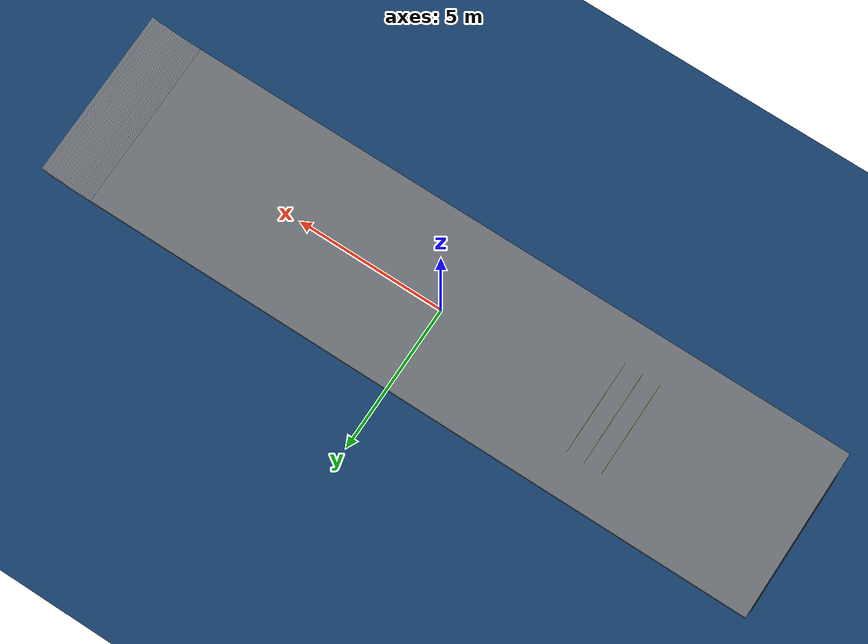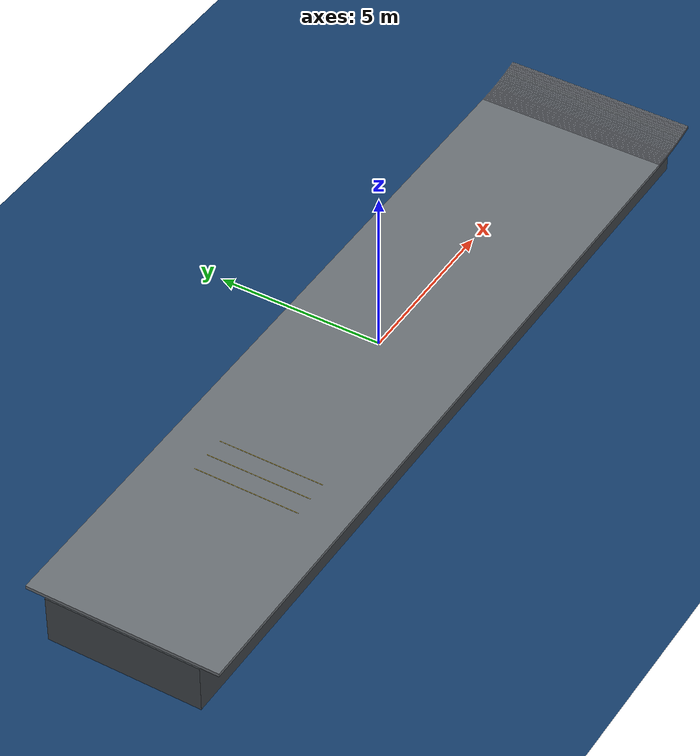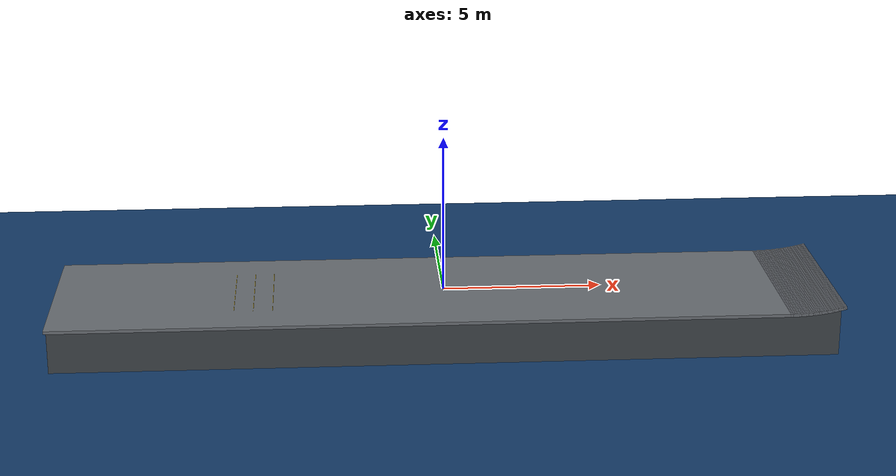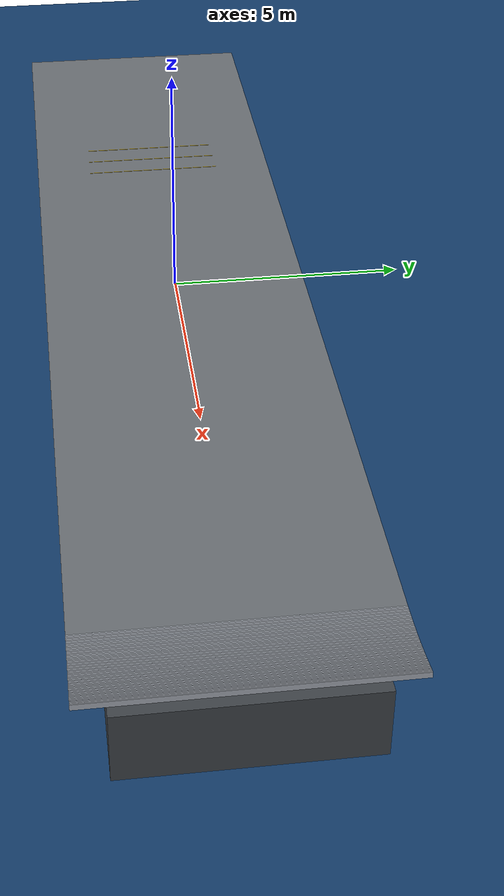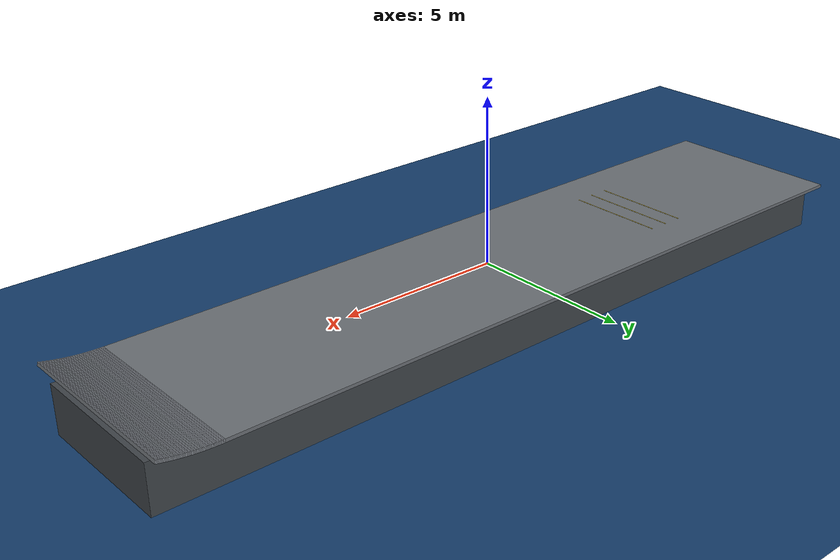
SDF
<sdf version="1.9">
 <world name="physics">
  <physics name="1ms" type="ignored">
   <max_step_size>0.001</max_step_size>
   <real_time_factor>1.0</real_time_factor>
  </physics>
  <plugin filename="gz-sim-physics-system" name="gz::sim::systems::Physics"/>
  <plugin filename="gz-sim-user-commands-system" name="gz::sim::systems::UserCommands"/>
  <plugin filename="gz-sim-scene-broadcaster-system" name="gz::sim::systems::SceneBroadcaster"/>
  <plugin filename="gz-sim-sensors-system" name="gz::sim::systems::Sensors">
   <render_engine>ogre2</render_engine>
  </plugin>
  <plugin filename="gz-sim-imu-system" name="gz::sim::systems::Imu"/>
  <plugin filename="gz-sim-air-pressure-system" name="gz::sim::systems::AirPressure"/>
  <plugin filename="gz-sim-magnetometer-system" name="gz::sim::systems::Magnetometer"/>
  <plugin filename="gz-sim-navsat-system" name="gz::sim::systems::NavSat"/>
  <spherical_coordinates>
   <surface_model>EARTH_WGS84</surface_model>
   <world_frame_orientation>ENU</world_frame_orientation>
   <latitude_deg>37.422</latitude_deg>
   <longitude_deg>-122.084</longitude_deg>
   <elevation>0</elevation>
   <heading_deg>0</heading_deg>
  </spherical_coordinates>
  <gravity>0 0 -9.81</gravity>
  <wind><linear_velocity>-2.400 0 0</linear_velocity></wind>
  <scene><ambient>0.55 0.55 0.6 1</ambient><background>0.62 0.75 0.88 1</background><grid>false</grid></scene>
  <light type="directional" name="sun">
   <pose>0 0 100 0 0 0</pose>
   <diffuse>0.95 0.95 0.9 1</diffuse>
   <direction>-0.4 0.3 -0.85</direction>
  </light>
  <model name="sea">
   <static>true</static>
   <pose>0 0 -1.6 0 0 0</pose>
   <link name="l">
    <visual name="v">
     <geometry><plane><normal>0 0 1</normal><size>3000 3000</size></plane></geometry>
     <material><diffuse>0.08 0.24 0.42 1</diffuse><ambient>0.08 0.24 0.42 1</ambient></material>
    </visual>
   </link>
  </model>
  <model name="ship">
   <static>true</static>
   <link name="l">
    <visual name="deck">
     <pose>-0.8641 0 -0.0500 0 0.00000 0</pose>
     <geometry><box><size>22.8811 5.7750 0.1000</size></box></geometry>
     <material><diffuse>0.42 0.44 0.46 1</diffuse><ambient>0.42 0.44 0.46 1</ambient></material>
    </visual>
    <collision name="deck_c">
     <pose>-0.8641 0 -0.0500 0 0.00000 0</pose>
     <geometry><box><size>22.8811 5.7750 0.1000</size></box></geometry>
     <surface><friction><ode><mu>1.0</mu><mu2>1.0</mu2></ode></friction></surface>
    </collision>
    <visual name="ramp0">
     <pose>10.5922 0 -0.0500 0 -0.00218 0</pose>
     <geometry><box><size>0.0352 5.7750 0.1000</size></box></geometry>
     <material><diffuse>0.55 0.57 0.6 1</diffuse><ambient>0.55 0.57 0.6 1</ambient></material>
    </visual>
    <collision name="ramp0_c">
     <pose>10.5922 0 -0.0500 0 -0.00218 0</pose>
     <geometry><box><size>0.0352 5.7750 0.1000</size></box></geometry>
     <surface><friction><ode><mu>1.0</mu><mu2>1.0</mu2></ode></friction></surface>
    </collision>
    <visual name="ramp1">
     <pose>10.6235 0 -0.0498 0 -0.00654 0</pose>
     <geometry><box><size>0.0352 5.7750 0.1000</size></box></geometry>
     <material><diffuse>0.55 0.57 0.6 1</diffuse><ambient>0.55 0.57 0.6 1</ambient></material>
    </visual>
    <collision name="ramp1_c">
     <pose>10.6235 0 -0.0498 0 -0.00654 0</pose>
     <geometry><box><size>0.0352 5.7750 0.1000</size></box></geometry>
     <surface><friction><ode><mu>1.0</mu><mu2>1.0</mu2></ode></friction></surface>
    </collision>
    <visual name="ramp2">
     <pose>10.6549 0 -0.0496 0 -0.01091 0</pose>
     <geometry><box><size>0.0352 5.7750 0.1000</size></box></geometry>
     <material><diffuse>0.55 0.57 0.6 1</diffuse><ambient>0.55 0.57 0.6 1</ambient></material>
    </visual>
    <collision name="ramp2_c">
     <pose>10.6549 0 -0.0496 0 -0.01091 0</pose>
     <geometry><box><size>0.0352 5.7750 0.1000</size></box></geometry>
     <surface><friction><ode><mu>1.0</mu><mu2>1.0</mu2></ode></friction></surface>
    </collision>
    <visual name="ramp3">
     <pose>10.6863 0 -0.0491 0 -0.01527 0</pose>
     <geometry><box><size>0.0352 5.7750 0.1000</size></box></geometry>
     <material><diffuse>0.55 0.57 0.6 1</diffuse><ambient>0.55 0.57 0.6 1</ambient></material>
    </visual>
    <collision name="ramp3_c">
     <pose>10.6863 0 -0.0491 0 -0.01527 0</pose>
     <geometry><box><size>0.0352 5.7750 0.1000</size></box></geometry>
     <surface><friction><ode><mu>1.0</mu><mu2>1.0</mu2></ode></friction></surface>
    </collision>
    <visual name="ramp4">
     <pose>10.7177 0 -0.0486 0 -0.01963 0</pose>
     <geometry><box><size>0.0352 5.7750 0.1000</size></box></geometry>
     <material><diffuse>0.55 0.57 0.6 1</diffuse><ambient>0.55 0.57 0.6 1</ambient></material>
    </visual>
    <collision name="ramp4_c">
     <pose>10.7177 0 -0.0486 0 -0.01963 0</pose>
     <geometry><box><size>0.0352 5.7750 0.1000</size></box></geometry>
     <surface><friction><ode><mu>1.0</mu><mu2>1.0</mu2></ode></friction></surface>
    </collision>
    <visual name="ramp5">
     <pose>10.7491 0 -0.0479 0 -0.02400 0</pose>
     <geometry><box><size>0.0352 5.7750 0.1000</size></box></geometry>
     <material><diffuse>0.55 0.57 0.6 1</diffuse><ambient>0.55 0.57 0.6 1</ambient></material>
    </visual>
    <collision name="ramp5_c">
     <pose>10.7491 0 -0.0479 0 -0.02400 0</pose>
     <geometry><box><size>0.0352 5.7750 0.1000</size></box></geometry>
     <surface><friction><ode><mu>1.0</mu><mu2>1.0</mu2></ode></friction></surface>
    </collision>
    <visual name="ramp6">
     <pose>10.7805 0 -0.0471 0 -0.02836 0</pose>
     <geometry><box><size>0.0352 5.7750 0.1000</size></box></geometry>
     <material><diffuse>0.55 0.57 0.6 1</diffuse><ambient>0.55 0.57 0.6 1</ambient></material>
    </visual>
    <collision name="ramp6_c">
     <pose>10.7805 0 -0.0471 0 -0.02836 0</pose>
     <geometry><box><size>0.0352 5.7750 0.1000</size></box></geometry>
     <surface><friction><ode><mu>1.0</mu><mu2>1.0</mu2></ode></friction></surface>
    </collision>
    <visual name="ramp7">
     <pose>10.8118 0 -0.0461 0 -0.03272 0</pose>
     <geometry><box><size>0.0352 5.7750 0.1000</size></box></geometry>
     <material><diffuse>0.55 0.57 0.6 1</diffuse><ambient>0.55 0.57 0.6 1</ambient></material>
    </visual>
    <collision name="ramp7_c">
     <pose>10.8118 0 -0.0461 0 -0.03272 0</pose>
     <geometry><box><size>0.0352 5.7750 0.1000</size></box></geometry>
     <surface><friction><ode><mu>1.0</mu><mu2>1.0</mu2></ode></friction></surface>
    </collision>
    <visual name="ramp8">
     <pose>10.8432 0 -0.0450 0 -0.03709 0</pose>
     <geometry><box><size>0.0352 5.7750 0.1000</size></box></geometry>
     <material><diffuse>0.55 0.57 0.6 1</diffuse><ambient>0.55 0.57 0.6 1</ambient></material>
    </visual>
    <collision name="ramp8_c">
     <pose>10.8432 0 -0.0450 0 -0.03709 0</pose>
     <geometry><box><size>0.0352 5.7750 0.1000</size></box></geometry>
     <surface><friction><ode><mu>1.0</mu><mu2>1.0</mu2></ode></friction></surface>
    </collision>
    <visual name="ramp9">
     <pose>10.8746 0 -0.0438 0 -0.04145 0</pose>
     <geometry><box><size>0.0352 5.7750 0.1000</size></box></geometry>
     <material><diffuse>0.55 0.57 0.6 1</diffuse><ambient>0.55 0.57 0.6 1</ambient></material>
    </visual>
    <collision name="ramp9_c">
     <pose>10.8746 0 -0.0438 0 -0.04145 0</pose>
     <geometry><box><size>0.0352 5.7750 0.1000</size></box></geometry>
     <surface><friction><ode><mu>1.0</mu><mu2>1.0</mu2></ode></friction></surface>
    </collision>
    <visual name="ramp10">
     <pose>10.9059 0 -0.0424 0 -0.04581 0</pose>
     <geometry><box><size>0.0352 5.7750 0.1000</size></box></geometry>
     <material><diffuse>0.55 0.57 0.6 1</diffuse><ambient>0.55 0.57 0.6 1</ambient></material>
    </visual>
    <collision name="ramp10_c">
     <pose>10.9059 0 -0.0424 0 -0.04581 0</pose>
     <geometry><box><size>0.0352 5.7750 0.1000</size></box></geometry>
     <surface><friction><ode><mu>1.0</mu><mu2>1.0</mu2></ode></friction></surface>
    </collision>
    <visual name="ramp11">
     <pose>10.9373 0 -0.0409 0 -0.05018 0</pose>
     <geometry><box><size>0.0352 5.7750 0.1000</size></box></geometry>
     <material><diffuse>0.55 0.57 0.6 1</diffuse><ambient>0.55 0.57 0.6 1</ambient></material>
    </visual>
    <collision name="ramp11_c">
     <pose>10.9373 0 -0.0409 0 -0.05018 0</pose>
     <geometry><box><size>0.0352 5.7750 0.1000</size></box></geometry>
     <surface><friction><ode><mu>1.0</mu><mu2>1.0</mu2></ode></friction></surface>
    </collision>
    <visual name="ramp12">
     <pose>10.9686 0 -0.0393 0 -0.05454 0</pose>
     <geometry><box><size>0.0352 5.7750 0.1000</size></box></geometry>
     <material><diffuse>0.55 0.57 0.6 1</diffuse><ambient>0.55 0.57 0.6 1</ambient></material>
    </visual>
    <collision name="ramp12_c">
     <pose>10.9686 0 -0.0393 0 -0.05454 0</pose>
     <geometry><box><size>0.0352 5.7750 0.1000</size></box></geometry>
     <surface><friction><ode><mu>1.0</mu><mu2>1.0</mu2></ode></friction></surface>
    </collision>
    <visual name="ramp13">
     <pose>11.0000 0 -0.0375 0 -0.05890 0</pose>
     <geometry><box><size>0.0352 5.7750 0.1000</size></box></geometry>
     <material><diffuse>0.55 0.57 0.6 1</diffuse><ambient>0.55 0.57 0.6 1</ambient></material>
    </visual>
    <collision name="ramp13_c">
     <pose>11.0000 0 -0.0375 0 -0.05890 0</pose>
     <geometry><box><size>0.0352 5.7750 0.1000</size></box></geometry>
     <surface><friction><ode><mu>1.0</mu><mu2>1.0</mu2></ode></friction></surface>
    </collision>
    <visual name="ramp14">
     <pose>11.0313 0 -0.0356 0 -0.06327 0</pose>
     <geometry><box><size>0.0352 5.7750 0.1000</size></box></geometry>
     <material><diffuse>0.55 0.57 0.6 1</diffuse><ambient>0.55 0.57 0.6 1</ambient></material>
    </visual>
    <collision name="ramp14_c">
     <pose>11.0313 0 -0.0356 0 -0.06327 0</pose>
     <geometry><box><size>0.0352 5.7750 0.1000</size></box></geometry>
     <surface><friction><ode><mu>1.0</mu><mu2>1.0</mu2></ode></friction></surface>
    </collision>
    <visual name="ramp15">
     <pose>11.0626 0 -0.0335 0 -0.06763 0</pose>
     <geometry><box><size>0.0352 5.7750 0.1000</size></box></geometry>
     <material><diffuse>0.55 0.57 0.6 1</diffuse><ambient>0.55 0.57 0.6 1</ambient></material>
    </visual>
    <collision name="ramp15_c">
     <pose>11.0626 0 -0.0335 0 -0.06763 0</pose>
     <geometry><box><size>0.0352 5.7750 0.1000</size></box></geometry>
     <surface><friction><ode><mu>1.0</mu><mu2>1.0</mu2></ode></friction></surface>
    </collision>
    <visual name="ramp16">
     <pose>11.0939 0 -0.0313 0 -0.07199 0</pose>
     <geometry><box><size>0.0352 5.7750 0.1000</size></box></geometry>
     <material><diffuse>0.55 0.57 0.6 1</diffuse><ambient>0.55 0.57 0.6 1</ambient></material>
    </visual>
    <collision name="ramp16_c">
     <pose>11.0939 0 -0.0313 0 -0.07199 0</pose>
     <geometry><box><size>0.0352 5.7750 0.1000</size></box></geometry>
     <surface><friction><ode><mu>1.0</mu><mu2>1.0</mu2></ode></friction></surface>
    </collision>
    <visual name="ramp17">
     <pose>11.1252 0 -0.0290 0 -0.07636 0</pose>
     <geometry><box><size>0.0352 5.7750 0.1000</size></box></geometry>
     <material><diffuse>0.55 0.57 0.6 1</diffuse><ambient>0.55 0.57 0.6 1</ambient></material>
    </visual>
    <collision name="ramp17_c">
     <pose>11.1252 0 -0.0290 0 -0.07636 0</pose>
     <geometry><box><size>0.0352 5.7750 0.1000</size></box></geometry>
     <surface><friction><ode><mu>1.0</mu><mu2>1.0</mu2></ode></friction></surface>
    </collision>
    <visual name="ramp18">
     <pose>11.1565 0 -0.0266 0 -0.08072 0</pose>
     <geometry><box><size>0.0352 5.7750 0.1000</size></box></geometry>
     <material><diffuse>0.55 0.57 0.6 1</diffuse><ambient>0.55 0.57 0.6 1</ambient></material>
    </visual>
    <collision name="ramp18_c">
     <pose>11.1565 0 -0.0266 0 -0.08072 0</pose>
     <geometry><box><size>0.0352 5.7750 0.1000</size></box></geometry>
     <surface><friction><ode><mu>1.0</mu><mu2>1.0</mu2></ode></friction></surface>
    </collision>
    <visual name="ramp19">
     <pose>11.1878 0 -0.0240 0 -0.08508 0</pose>
     <geometry><box><size>0.0352 5.7750 0.1000</size></box></geometry>
     <material><diffuse>0.55 0.57 0.6 1</diffuse><ambient>0.55 0.57 0.6 1</ambient></material>
    </visual>
    <collision name="ramp19_c">
     <pose>11.1878 0 -0.0240 0 -0.08508 0</pose>
     <geometry><box><size>0.0352 5.7750 0.1000</size></box></geometry>
     <surface><friction><ode><mu>1.0</mu><mu2>1.0</mu2></ode></friction></surface>
    </collision>
    <visual name="ramp20">
     <pose>11.2191 0 -0.0212 0 -0.08945 0</pose>
     <geometry><box><size>0.0352 5.7750 0.1000</size></box></geometry>
     <material><diffuse>0.55 0.57 0.6 1</diffuse><ambient>0.55 0.57 0.6 1</ambient></material>
    </visual>
    <collision name="ramp20_c">
     <pose>11.2191 0 -0.0212 0 -0.08945 0</pose>
     <geometry><box><size>0.0352 5.7750 0.1000</size></box></geometry>
     <surface><friction><ode><mu>1.0</mu><mu2>1.0</mu2></ode></friction></surface>
    </collision>
    <visual name="ramp21">
     <pose>11.2503 0 -0.0184 0 -0.09381 0</pose>
     <geometry><box><size>0.0352 5.7750 0.1000</size></box></geometry>
     <material><diffuse>0.55 0.57 0.6 1</diffuse><ambient>0.55 0.57 0.6 1</ambient></material>
    </visual>
    <collision name="ramp21_c">
     <pose>11.2503 0 -0.0184 0 -0.09381 0</pose>
     <geometry><box><size>0.0352 5.7750 0.1000</size></box></geometry>
     <surface><friction><ode><mu>1.0</mu><mu2>1.0</mu2></ode></friction></surface>
    </collision>
    <visual name="ramp22">
     <pose>11.2816 0 -0.0153 0 -0.09817 0</pose>
     <geometry><box><size>0.0352 5.7750 0.1000</size></box></geometry>
     <material><diffuse>0.55 0.57 0.6 1</diffuse><ambient>0.55 0.57 0.6 1</ambient></material>
    </visual>
    <collision name="ramp22_c">
     <pose>11.2816 0 -0.0153 0 -0.09817 0</pose>
     <geometry><box><size>0.0352 5.7750 0.1000</size></box></geometry>
     <surface><friction><ode><mu>1.0</mu><mu2>1.0</mu2></ode></friction></surface>
    </collision>
    <visual name="ramp23">
     <pose>11.3128 0 -0.0122 0 -0.10254 0</pose>
     <geometry><box><size>0.0352 5.7750 0.1000</size></box></geometry>
     <material><diffuse>0.55 0.57 0.6 1</diffuse><ambient>0.55 0.57 0.6 1</ambient></material>
    </visual>
    <collision name="ramp23_c">
     <pose>11.3128 0 -0.0122 0 -0.10254 0</pose>
     <geometry><box><size>0.0352 5.7750 0.1000</size></box></geometry>
     <surface><friction><ode><mu>1.0</mu><mu2>1.0</mu2></ode></friction></surface>
    </collision>
    <visual name="ramp24">
     <pose>11.3440 0 -0.0089 0 -0.10690 0</pose>
     <geometry><box><size>0.0352 5.7750 0.1000</size></box></geometry>
     <material><diffuse>0.55 0.57 0.6 1</diffuse><ambient>0.55 0.57 0.6 1</ambient></material>
    </visual>
    <collision name="ramp24_c">
     <pose>11.3440 0 -0.0089 0 -0.10690 0</pose>
     <geometry><box><size>0.0352 5.7750 0.1000</size></box></geometry>
     <surface><friction><ode><mu>1.0</mu><mu2>1.0</mu2></ode></friction></surface>
    </collision>
    <visual name="ramp25">
     <pose>11.3752 0 -0.0055 0 -0.11126 0</pose>
     <geometry><box><size>0.0352 5.7750 0.1000</size></box></geometry>
     <material><diffuse>0.55 0.57 0.6 1</diffuse><ambient>0.55 0.57 0.6 1</ambient></material>
    </visual>
    <collision name="ramp25_c">
     <pose>11.3752 0 -0.0055 0 -0.11126 0</pose>
     <geometry><box><size>0.0352 5.7750 0.1000</size></box></geometry>
     <surface><friction><ode><mu>1.0</mu><mu2>1.0</mu2></ode></friction></surface>
    </collision>
    <visual name="ramp26">
     <pose>11.4064 0 -0.0019 0 -0.11563 0</pose>
     <geometry><box><size>0.0352 5.7750 0.1000</size></box></geometry>
     <material><diffuse>0.55 0.57 0.6 1</diffuse><ambient>0.55 0.57 0.6 1</ambient></material>
    </visual>
    <collision name="ramp26_c">
     <pose>11.4064 0 -0.0019 0 -0.11563 0</pose>
     <geometry><box><size>0.0352 5.7750 0.1000</size></box></geometry>
     <surface><friction><ode><mu>1.0</mu><mu2>1.0</mu2></ode></friction></surface>
    </collision>
    <visual name="ramp27">
     <pose>11.4376 0 0.0017 0 -0.11999 0</pose>
     <geometry><box><size>0.0352 5.7750 0.1000</size></box></geometry>
     <material><diffuse>0.55 0.57 0.6 1</diffuse><ambient>0.55 0.57 0.6 1</ambient></material>
    </visual>
    <collision name="ramp27_c">
     <pose>11.4376 0 0.0017 0 -0.11999 0</pose>
     <geometry><box><size>0.0352 5.7750 0.1000</size></box></geometry>
     <surface><friction><ode><mu>1.0</mu><mu2>1.0</mu2></ode></friction></surface>
    </collision>
    <visual name="ramp28">
     <pose>11.4687 0 0.0056 0 -0.12435 0</pose>
     <geometry><box><size>0.0352 5.7750 0.1000</size></box></geometry>
     <material><diffuse>0.55 0.57 0.6 1</diffuse><ambient>0.55 0.57 0.6 1</ambient></material>
    </visual>
    <collision name="ramp28_c">
     <pose>11.4687 0 0.0056 0 -0.12435 0</pose>
     <geometry><box><size>0.0352 5.7750 0.1000</size></box></geometry>
     <surface><friction><ode><mu>1.0</mu><mu2>1.0</mu2></ode></friction></surface>
    </collision>
    <visual name="ramp29">
     <pose>11.4999 0 0.0095 0 -0.12872 0</pose>
     <geometry><box><size>0.0352 5.7750 0.1000</size></box></geometry>
     <material><diffuse>0.55 0.57 0.6 1</diffuse><ambient>0.55 0.57 0.6 1</ambient></material>
    </visual>
    <collision name="ramp29_c">
     <pose>11.4999 0 0.0095 0 -0.12872 0</pose>
     <geometry><box><size>0.0352 5.7750 0.1000</size></box></geometry>
     <surface><friction><ode><mu>1.0</mu><mu2>1.0</mu2></ode></friction></surface>
    </collision>
    <visual name="ramp30">
     <pose>11.5310 0 0.0136 0 -0.13308 0</pose>
     <geometry><box><size>0.0352 5.7750 0.1000</size></box></geometry>
     <material><diffuse>0.55 0.57 0.6 1</diffuse><ambient>0.55 0.57 0.6 1</ambient></material>
    </visual>
    <collision name="ramp30_c">
     <pose>11.5310 0 0.0136 0 -0.13308 0</pose>
     <geometry><box><size>0.0352 5.7750 0.1000</size></box></geometry>
     <surface><friction><ode><mu>1.0</mu><mu2>1.0</mu2></ode></friction></surface>
    </collision>
    <visual name="ramp31">
     <pose>11.5621 0 0.0179 0 -0.13744 0</pose>
     <geometry><box><size>0.0352 5.7750 0.1000</size></box></geometry>
     <material><diffuse>0.55 0.57 0.6 1</diffuse><ambient>0.55 0.57 0.6 1</ambient></material>
    </visual>
    <collision name="ramp31_c">
     <pose>11.5621 0 0.0179 0 -0.13744 0</pose>
     <geometry><box><size>0.0352 5.7750 0.1000</size></box></geometry>
     <surface><friction><ode><mu>1.0</mu><mu2>1.0</mu2></ode></friction></surface>
    </collision>
    <visual name="ramp32">
     <pose>11.5932 0 0.0222 0 -0.14181 0</pose>
     <geometry><box><size>0.0352 5.7750 0.1000</size></box></geometry>
     <material><diffuse>0.55 0.57 0.6 1</diffuse><ambient>0.55 0.57 0.6 1</ambient></material>
    </visual>
    <collision name="ramp32_c">
     <pose>11.5932 0 0.0222 0 -0.14181 0</pose>
     <geometry><box><size>0.0352 5.7750 0.1000</size></box></geometry>
     <surface><friction><ode><mu>1.0</mu><mu2>1.0</mu2></ode></friction></surface>
    </collision>
    <visual name="ramp33">
     <pose>11.6242 0 0.0267 0 -0.14617 0</pose>
     <geometry><box><size>0.0352 5.7750 0.1000</size></box></geometry>
     <material><diffuse>0.55 0.57 0.6 1</diffuse><ambient>0.55 0.57 0.6 1</ambient></material>
    </visual>
    <collision name="ramp33_c">
     <pose>11.6242 0 0.0267 0 -0.14617 0</pose>
     <geometry><box><size>0.0352 5.7750 0.1000</size></box></geometry>
     <surface><friction><ode><mu>1.0</mu><mu2>1.0</mu2></ode></friction></surface>
    </collision>
    <visual name="ramp34">
     <pose>11.6553 0 0.0314 0 -0.15053 0</pose>
     <geometry><box><size>0.0352 5.7750 0.1000</size></box></geometry>
     <material><diffuse>0.55 0.57 0.6 1</diffuse><ambient>0.55 0.57 0.6 1</ambient></material>
    </visual>
    <collision name="ramp34_c">
     <pose>11.6553 0 0.0314 0 -0.15053 0</pose>
     <geometry><box><size>0.0352 5.7750 0.1000</size></box></geometry>
     <surface><friction><ode><mu>1.0</mu><mu2>1.0</mu2></ode></friction></surface>
    </collision>
    <visual name="ramp35">
     <pose>11.6863 0 0.0361 0 -0.15490 0</pose>
     <geometry><box><size>0.0352 5.7750 0.1000</size></box></geometry>
     <material><diffuse>0.55 0.57 0.6 1</diffuse><ambient>0.55 0.57 0.6 1</ambient></material>
    </visual>
    <collision name="ramp35_c">
     <pose>11.6863 0 0.0361 0 -0.15490 0</pose>
     <geometry><box><size>0.0352 5.7750 0.1000</size></box></geometry>
     <surface><friction><ode><mu>1.0</mu><mu2>1.0</mu2></ode></friction></surface>
    </collision>
    <visual name="ramp36">
     <pose>11.7173 0 0.0411 0 -0.15926 0</pose>
     <geometry><box><size>0.0352 5.7750 0.1000</size></box></geometry>
     <material><diffuse>0.55 0.57 0.6 1</diffuse><ambient>0.55 0.57 0.6 1</ambient></material>
    </visual>
    <collision name="ramp36_c">
     <pose>11.7173 0 0.0411 0 -0.15926 0</pose>
     <geometry><box><size>0.0352 5.7750 0.1000</size></box></geometry>
     <surface><friction><ode><mu>1.0</mu><mu2>1.0</mu2></ode></friction></surface>
    </collision>
    <visual name="ramp37">
     <pose>11.7483 0 0.0461 0 -0.16362 0</pose>
     <geometry><box><size>0.0352 5.7750 0.1000</size></box></geometry>
     <material><diffuse>0.55 0.57 0.6 1</diffuse><ambient>0.55 0.57 0.6 1</ambient></material>
    </visual>
    <collision name="ramp37_c">
     <pose>11.7483 0 0.0461 0 -0.16362 0</pose>
     <geometry><box><size>0.0352 5.7750 0.1000</size></box></geometry>
     <surface><friction><ode><mu>1.0</mu><mu2>1.0</mu2></ode></friction></surface>
    </collision>
    <visual name="ramp38">
     <pose>11.7792 0 0.0513 0 -0.16799 0</pose>
     <geometry><box><size>0.0352 5.7750 0.1000</size></box></geometry>
     <material><diffuse>0.55 0.57 0.6 1</diffuse><ambient>0.55 0.57 0.6 1</ambient></material>
    </visual>
    <collision name="ramp38_c">
     <pose>11.7792 0 0.0513 0 -0.16799 0</pose>
     <geometry><box><size>0.0352 5.7750 0.1000</size></box></geometry>
     <surface><friction><ode><mu>1.0</mu><mu2>1.0</mu2></ode></friction></surface>
    </collision>
    <visual name="ramp39">
     <pose>11.8102 0 0.0566 0 -0.17235 0</pose>
     <geometry><box><size>0.0352 5.7750 0.1000</size></box></geometry>
     <material><diffuse>0.55 0.57 0.6 1</diffuse><ambient>0.55 0.57 0.6 1</ambient></material>
    </visual>
    <collision name="ramp39_c">
     <pose>11.8102 0 0.0566 0 -0.17235 0</pose>
     <geometry><box><size>0.0352 5.7750 0.1000</size></box></geometry>
     <surface><friction><ode><mu>1.0</mu><mu2>1.0</mu2></ode></friction></surface>
    </collision>
    <visual name="ramp40">
     <pose>11.8411 0 0.0620 0 -0.17671 0</pose>
     <geometry><box><size>0.0352 5.7750 0.1000</size></box></geometry>
     <material><diffuse>0.55 0.57 0.6 1</diffuse><ambient>0.55 0.57 0.6 1</ambient></material>
    </visual>
    <collision name="ramp40_c">
     <pose>11.8411 0 0.0620 0 -0.17671 0</pose>
     <geometry><box><size>0.0352 5.7750 0.1000</size></box></geometry>
     <surface><friction><ode><mu>1.0</mu><mu2>1.0</mu2></ode></friction></surface>
    </collision>
    <visual name="ramp41">
     <pose>11.8720 0 0.0676 0 -0.18108 0</pose>
     <geometry><box><size>0.0352 5.7750 0.1000</size></box></geometry>
     <material><diffuse>0.55 0.57 0.6 1</diffuse><ambient>0.55 0.57 0.6 1</ambient></material>
    </visual>
    <collision name="ramp41_c">
     <pose>11.8720 0 0.0676 0 -0.18108 0</pose>
     <geometry><box><size>0.0352 5.7750 0.1000</size></box></geometry>
     <surface><friction><ode><mu>1.0</mu><mu2>1.0</mu2></ode></friction></surface>
    </collision>
    <visual name="ramp42">
     <pose>11.9028 0 0.0734 0 -0.18544 0</pose>
     <geometry><box><size>0.0352 5.7750 0.1000</size></box></geometry>
     <material><diffuse>0.55 0.57 0.6 1</diffuse><ambient>0.55 0.57 0.6 1</ambient></material>
    </visual>
    <collision name="ramp42_c">
     <pose>11.9028 0 0.0734 0 -0.18544 0</pose>
     <geometry><box><size>0.0352 5.7750 0.1000</size></box></geometry>
     <surface><friction><ode><mu>1.0</mu><mu2>1.0</mu2></ode></friction></surface>
    </collision>
    <visual name="ramp43">
     <pose>11.9337 0 0.0792 0 -0.18980 0</pose>
     <geometry><box><size>0.0352 5.7750 0.1000</size></box></geometry>
     <material><diffuse>0.55 0.57 0.6 1</diffuse><ambient>0.55 0.57 0.6 1</ambient></material>
    </visual>
    <collision name="ramp43_c">
     <pose>11.9337 0 0.0792 0 -0.18980 0</pose>
     <geometry><box><size>0.0352 5.7750 0.1000</size></box></geometry>
     <surface><friction><ode><mu>1.0</mu><mu2>1.0</mu2></ode></friction></surface>
    </collision>
    <visual name="ramp44">
     <pose>11.9645 0 0.0852 0 -0.19417 0</pose>
     <geometry><box><size>0.0352 5.7750 0.1000</size></box></geometry>
     <material><diffuse>0.55 0.57 0.6 1</diffuse><ambient>0.55 0.57 0.6 1</ambient></material>
    </visual>
    <collision name="ramp44_c">
     <pose>11.9645 0 0.0852 0 -0.19417 0</pose>
     <geometry><box><size>0.0352 5.7750 0.1000</size></box></geometry>
     <surface><friction><ode><mu>1.0</mu><mu2>1.0</mu2></ode></friction></surface>
    </collision>
    <visual name="ramp45">
     <pose>11.9953 0 0.0913 0 -0.19853 0</pose>
     <geometry><box><size>0.0352 5.7750 0.1000</size></box></geometry>
     <material><diffuse>0.55 0.57 0.6 1</diffuse><ambient>0.55 0.57 0.6 1</ambient></material>
    </visual>
    <collision name="ramp45_c">
     <pose>11.9953 0 0.0913 0 -0.19853 0</pose>
     <geometry><box><size>0.0352 5.7750 0.1000</size></box></geometry>
     <surface><friction><ode><mu>1.0</mu><mu2>1.0</mu2></ode></friction></surface>
    </collision>
    <visual name="ramp46">
     <pose>12.0260 0 0.0976 0 -0.20289 0</pose>
     <geometry><box><size>0.0352 5.7750 0.1000</size></box></geometry>
     <material><diffuse>0.55 0.57 0.6 1</diffuse><ambient>0.55 0.57 0.6 1</ambient></material>
    </visual>
    <collision name="ramp46_c">
     <pose>12.0260 0 0.0976 0 -0.20289 0</pose>
     <geometry><box><size>0.0352 5.7750 0.1000</size></box></geometry>
     <surface><friction><ode><mu>1.0</mu><mu2>1.0</mu2></ode></friction></surface>
    </collision>
    <visual name="ramp47">
     <pose>12.0568 0 0.1040 0 -0.20726 0</pose>
     <geometry><box><size>0.0352 5.7750 0.1000</size></box></geometry>
     <material><diffuse>0.55 0.57 0.6 1</diffuse><ambient>0.55 0.57 0.6 1</ambient></material>
    </visual>
    <collision name="ramp47_c">
     <pose>12.0568 0 0.1040 0 -0.20726 0</pose>
     <geometry><box><size>0.0352 5.7750 0.1000</size></box></geometry>
     <surface><friction><ode><mu>1.0</mu><mu2>1.0</mu2></ode></friction></surface>
    </collision>
    <visual name="ramp48">
     <pose>12.0875 0 0.1105 0 -0.21162 0</pose>
     <geometry><box><size>0.0352 5.7750 0.1000</size></box></geometry>
     <material><diffuse>0.55 0.57 0.6 1</diffuse><ambient>0.55 0.57 0.6 1</ambient></material>
    </visual>
    <collision name="ramp48_c">
     <pose>12.0875 0 0.1105 0 -0.21162 0</pose>
     <geometry><box><size>0.0352 5.7750 0.1000</size></box></geometry>
     <surface><friction><ode><mu>1.0</mu><mu2>1.0</mu2></ode></friction></surface>
    </collision>
    <visual name="ramp49">
     <pose>12.1181 0 0.1172 0 -0.21598 0</pose>
     <geometry><box><size>0.0352 5.7750 0.1000</size></box></geometry>
     <material><diffuse>0.55 0.57 0.6 1</diffuse><ambient>0.55 0.57 0.6 1</ambient></material>
    </visual>
    <collision name="ramp49_c">
     <pose>12.1181 0 0.1172 0 -0.21598 0</pose>
     <geometry><box><size>0.0352 5.7750 0.1000</size></box></geometry>
     <surface><friction><ode><mu>1.0</mu><mu2>1.0</mu2></ode></friction></surface>
    </collision>
    <visual name="ramp50">
     <pose>12.1488 0 0.1240 0 -0.22035 0</pose>
     <geometry><box><size>0.0352 5.7750 0.1000</size></box></geometry>
     <material><diffuse>0.55 0.57 0.6 1</diffuse><ambient>0.55 0.57 0.6 1</ambient></material>
    </visual>
    <collision name="ramp50_c">
     <pose>12.1488 0 0.1240 0 -0.22035 0</pose>
     <geometry><box><size>0.0352 5.7750 0.1000</size></box></geometry>
     <surface><friction><ode><mu>1.0</mu><mu2>1.0</mu2></ode></friction></surface>
    </collision>
    <visual name="ramp51">
     <pose>12.1794 0 0.1309 0 -0.22471 0</pose>
     <geometry><box><size>0.0352 5.7750 0.1000</size></box></geometry>
     <material><diffuse>0.55 0.57 0.6 1</diffuse><ambient>0.55 0.57 0.6 1</ambient></material>
    </visual>
    <collision name="ramp51_c">
     <pose>12.1794 0 0.1309 0 -0.22471 0</pose>
     <geometry><box><size>0.0352 5.7750 0.1000</size></box></geometry>
     <surface><friction><ode><mu>1.0</mu><mu2>1.0</mu2></ode></friction></surface>
    </collision>
    <visual name="ramp52">
     <pose>12.2100 0 0.1379 0 -0.22907 0</pose>
     <geometry><box><size>0.0352 5.7750 0.1000</size></box></geometry>
     <material><diffuse>0.55 0.57 0.6 1</diffuse><ambient>0.55 0.57 0.6 1</ambient></material>
    </visual>
    <collision name="ramp52_c">
     <pose>12.2100 0 0.1379 0 -0.22907 0</pose>
     <geometry><box><size>0.0352 5.7750 0.1000</size></box></geometry>
     <surface><friction><ode><mu>1.0</mu><mu2>1.0</mu2></ode></friction></surface>
    </collision>
    <visual name="ramp53">
     <pose>12.2405 0 0.1451 0 -0.23344 0</pose>
     <geometry><box><size>0.0352 5.7750 0.1000</size></box></geometry>
     <material><diffuse>0.55 0.57 0.6 1</diffuse><ambient>0.55 0.57 0.6 1</ambient></material>
    </visual>
    <collision name="ramp53_c">
     <pose>12.2405 0 0.1451 0 -0.23344 0</pose>
     <geometry><box><size>0.0352 5.7750 0.1000</size></box></geometry>
     <surface><friction><ode><mu>1.0</mu><mu2>1.0</mu2></ode></friction></surface>
    </collision>
    <visual name="ramp54">
     <pose>12.2711 0 0.1525 0 -0.23780 0</pose>
     <geometry><box><size>0.0352 5.7750 0.1000</size></box></geometry>
     <material><diffuse>0.55 0.57 0.6 1</diffuse><ambient>0.55 0.57 0.6 1</ambient></material>
    </visual>
    <collision name="ramp54_c">
     <pose>12.2711 0 0.1525 0 -0.23780 0</pose>
     <geometry><box><size>0.0352 5.7750 0.1000</size></box></geometry>
     <surface><friction><ode><mu>1.0</mu><mu2>1.0</mu2></ode></friction></surface>
    </collision>
    <visual name="ramp55">
     <pose>12.3015 0 0.1599 0 -0.24216 0</pose>
     <geometry><box><size>0.0352 5.7750 0.1000</size></box></geometry>
     <material><diffuse>0.55 0.57 0.6 1</diffuse><ambient>0.55 0.57 0.6 1</ambient></material>
    </visual>
    <collision name="ramp55_c">
     <pose>12.3015 0 0.1599 0 -0.24216 0</pose>
     <geometry><box><size>0.0352 5.7750 0.1000</size></box></geometry>
     <surface><friction><ode><mu>1.0</mu><mu2>1.0</mu2></ode></friction></surface>
    </collision>
    <visual name="hull">
     <pose>0.0000 0 -0.9000 0 0.00000 0</pose>
     <geometry><box><size>24.6094 4.6200 1.5000</size></box></geometry>
     <material><diffuse>0.25 0.27 0.29 1</diffuse><ambient>0.25 0.27 0.29 1</ambient></material>
    </visual>
    <visual name="wire0">
     <pose>-6.600 0 0.006 1.5708 0 0</pose>
     <geometry><cylinder><radius>0.006</radius><length>3.176</length></cylinder></geometry>
     <material><diffuse>0.95 0.8 0.1 1</diffuse></material>
    </visual>
    <visual name="wire1">
     <pose>-6.000 0 0.006 1.5708 0 0</pose>
     <geometry><cylinder><radius>0.006</radius><length>3.176</length></cylinder></geometry>
     <material><diffuse>0.95 0.8 0.1 1</diffuse></material>
    </visual>
    <visual name="wire2">
     <pose>-5.400 0 0.006 1.5708 0 0</pose>
     <geometry><cylinder><radius>0.006</radius><length>3.176</length></cylinder></geometry>
     <material><diffuse>0.95 0.8 0.1 1</diffuse></material>
    </visual>
   </link>
  </model>
 </world>
</sdf>
